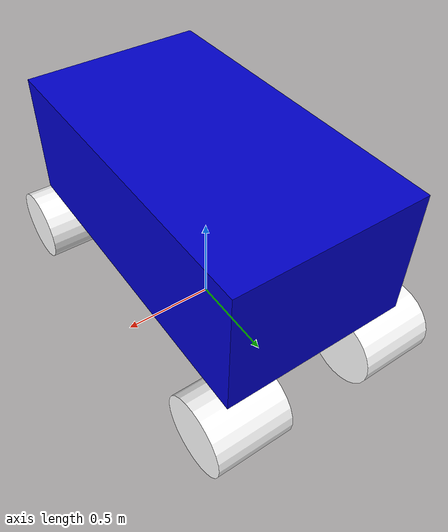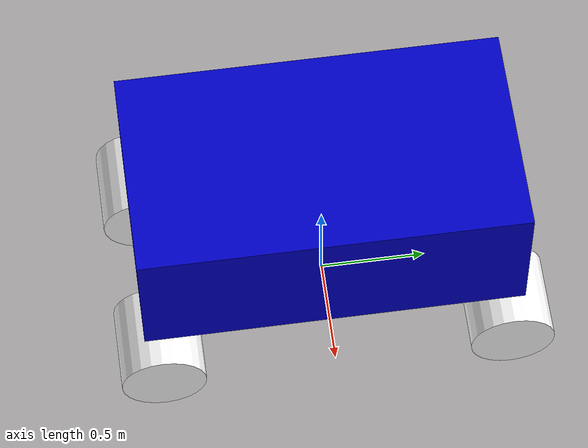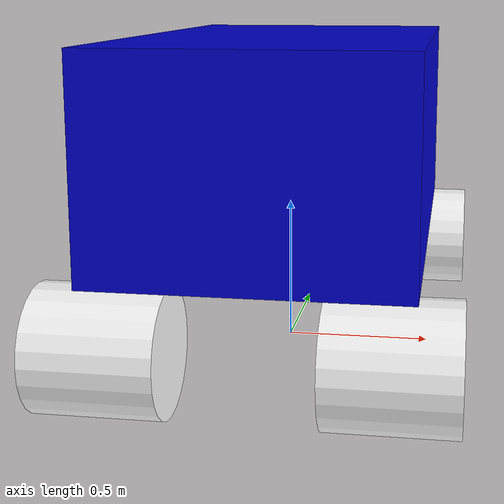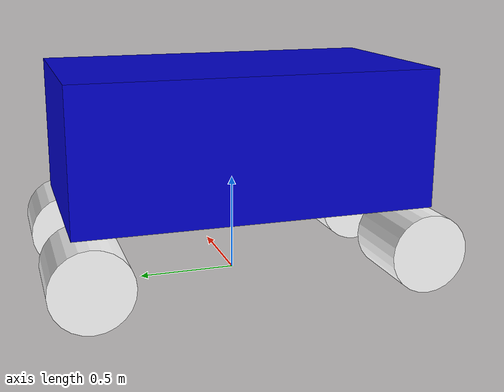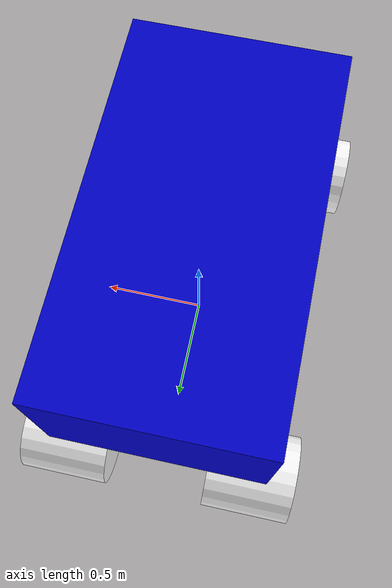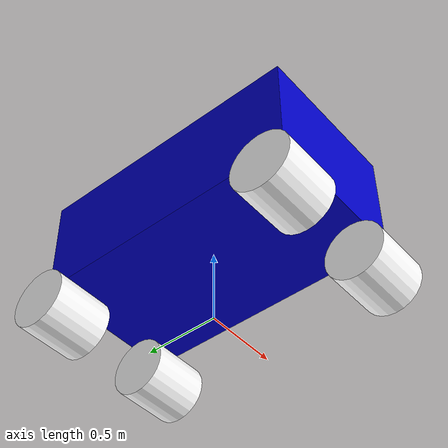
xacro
<?xml version="1.0"?>
<robot name="robot" xmlns:xacro="http://ros.org/wiki/xacro">

  <xacro:property name="h" value="0.4" />
  <xacro:property name="rad" value="0.2" />
  <material name="blue">
    <color rgba="0 0 0.8 1"/>
  </material>

  <material name="white">
    <color rgba="1 1 1 1"/>
  </material>

  <xacro:macro name="wheeel" params="mass">
    <inertial>
      <mass value="${mass}" />
      <inertia ixx="0.28" ixy="0.0" ixz="0.0" iyy="0.28" iyz="0.0" izz="0.005" />
    </inertial>
  </xacro:macro>

  <xacro:macro name="basse" params="mass">
    <inertial>
      <mass value="${mass}" />
      <inertia ixx="6.19" ixy="0.0" ixz="0.0" iyy="7.03" iyz="0.0" izz="2.47" />
    </inertial>
  </xacro:macro>

  <link name="world">
  </link>
  <joint name="world_to_base" type="fixed">
    <parent link="world"/>
    <child link="base_link"/>
    <origin rpy="0 0 0" xyz="0 0 0"/>
  </joint>
  <link name="base_link">
    <visual>
      <geometry>
        <box size="1.0 1.8 0.7"/>
      </geometry>
      <origin rpy="0 0 0" xyz="0 0 0.75"/>
      <material name="blue"/>
    </visual>
    <collision>
      <geometry>
        <box size="1.0 1.8 0.7"/>
      </geometry>
    </collision>
    <xacro:basse mass="0.25"/>
  </link>
  <gazebo reference="base_link">
    <material>Gazebo/White</material>
  </gazebo>
  <link name="right_back_wheel">
    <visual>
      <geometry>
        <cylinder length="${h}" radius="${rad}"/>
      </geometry>
      <origin rpy="0 1.5708 0" xyz="0 0 0"/>
      <material name="white"/>
    </visual>
    <collision>
      <geometry>
        <cylinder length="${h}" radius="${rad}"/>
      </geometry>
    </collision>
   <xacro:wheeel mass="0.25"/>
  </link>
  <gazebo reference="right_back_wheel">
    <material>Gazebo/Blue</material>
  </gazebo>

  <joint name="base_to_right_back_wheel" type="continuous">
    <axis rpy="0 0 0" xyz="1 0 0"/>
    <parent link="base_link"/>
    <child link="right_back_wheel"/>
    <origin rpy="0 0 0" xyz="-0.43 0.83 0.2"/>
  </joint>

  <link name="right_front_wheel">
    <visual>
      <geometry>
        <cylinder length="${h}" radius="${rad}"/>
      </geometry>
      <origin rpy="0 1.5708 0" xyz="0 0 0"/>
      <material name="white"/>
    </visual>
    <collision>
      <geometry>
        <cylinder length="${h}" radius="${rad}"/>
      </geometry>
    </collision>
    <xacro:wheeel mass="0.25"/>
  </link>
  <gazebo reference="right_front_wheel">
    <material>Gazebo/Blue</material>
  </gazebo>

  <joint name="base_to_right_front_wheel" type="continuous">
    <axis rpy="0 0 0" xyz="1 0 0"/>
    <parent link="base_link"/>
    <child link="right_front_wheel"/>
    <origin rpy="0 0 0" xyz="0.43 0.83 0.2"/>
  </joint>

  <link name="left_back_wheel">
    <visual>
      <geometry>
        <cylinder length="${h}" radius="${rad}"/>
      </geometry>
      <origin rpy="0 1.5708 0" xyz="0 0 0"/>
      <material name="white"/>
    </visual>
    <collision>
      <geometry>
        <cylinder length="${h}" radius="${rad}"/>
      </geometry>
    </collision>
    <xacro:wheeel mass="0.25"/>
  </link>
  <gazebo reference="left_back_wheel">
    <material>Gazebo/Blue</material>
  </gazebo>

  <joint name="base_to_left_back_wheel" type="continuous">
    <axis rpy="0 0 0" xyz="1 0 0"/>
    <parent link="base_link"/>
    <child link="left_back_wheel"/>
    <origin rpy="0 0 0" xyz="-0.43 -0.83 0.2"/>
  </joint>

  <link name="left_front_wheel">
    <visual>
      <geometry>
        <cylinder length="${h}" radius="${rad}"/>
      </geometry>
      <origin rpy="0 1.5708 0" xyz="0 0 0"/>
      <material name="white"/>
    </visual>
    <collision>
      <geometry>
        <cylinder length="${h}" radius="${rad}"/>
      </geometry>
    </collision>
    <xacro:wheeel mass="0.25"/>
  </link>
  <gazebo reference="left_front_wheel">
    <material>Gazebo/Blue</material>
  </gazebo>

  <joint name="base_to_left_front_wheel" type="continuous">
    <axis rpy="0 0 1" xyz="1 0 0"/>
    <parent link="base_link"/>
    <child link="left_front_wheel"/>
    <origin rpy="0 0 0" xyz="0.43 -0.83 0.2"/>
  </joint>

</robot>
